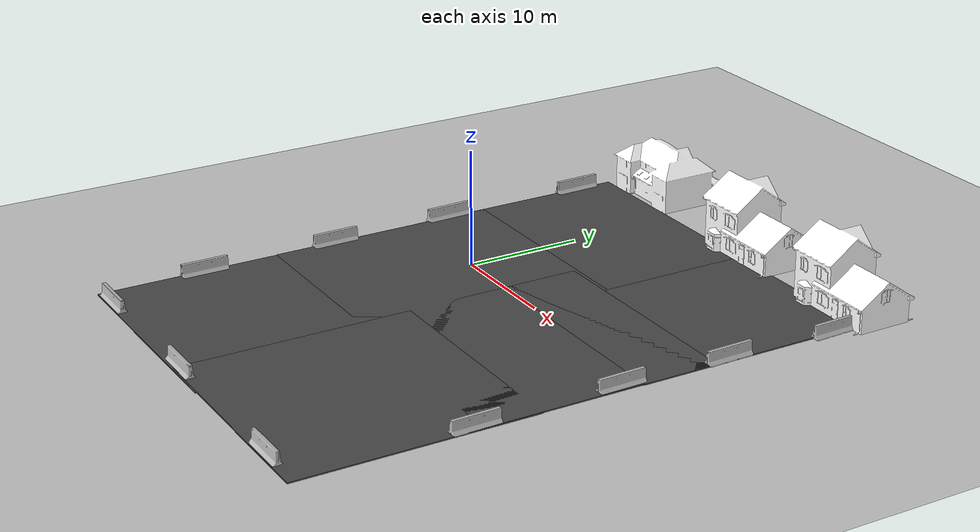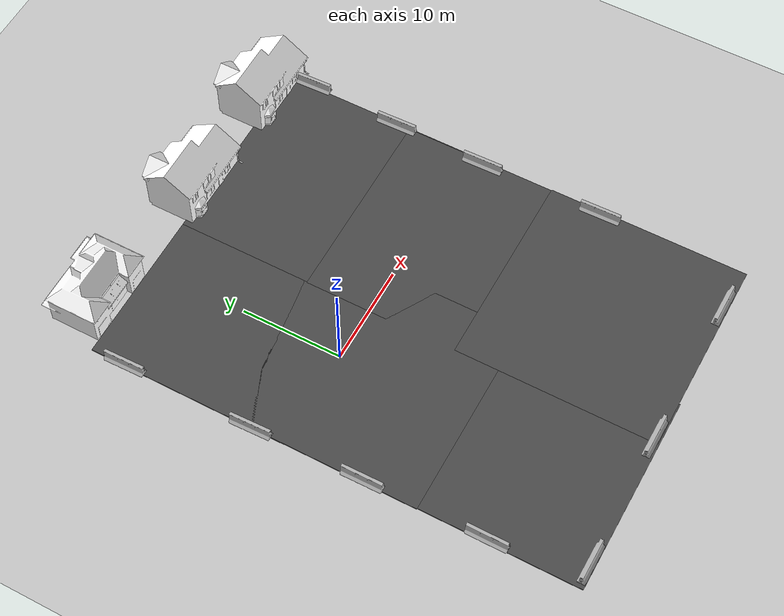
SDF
<sdf version="1.4">
 <world name="default">
  <light name="sun" type="directional">
   <pose>0 0 10 0 -0 0</pose>
   <diffuse>0.8 0.8 0.8 1</diffuse>
   <specular>0.2 0.2 0.2 1</specular>
   <attenuation>
    <range>1000</range>
    <constant>0.9</constant>
    <linear>0.01</linear>
    <quadratic>0.001</quadratic>
   </attenuation>
   <direction>-0.5 0.1 -0.9</direction>
  </light>
  <model name="ground_plane">
   <static>1</static>
   <link name="link">
    <collision name="collision">
     <geometry><plane><normal>0 0 1</normal><size>100 100</size></plane></geometry>
     <surface><friction><ode><mu>100</mu><mu2>50</mu2></ode></friction></surface>
    </collision>
    <visual name="visual">
     <cast_shadows>0</cast_shadows>
     <geometry><plane><normal>0 0 1</normal><size>100 100</size></plane></geometry>
     <material>
      <script><uri>file://media/materials/scripts/gazebo.material</uri><name>Gazebo/Grey</name></script>
     </material>
    </visual>
    <velocity_decay><linear>0</linear><angular>0</angular></velocity_decay>
   </link>
  </model>
  <physics type="ode">
   <max_step_size>0.001</max_step_size>
   <real_time_factor>1</real_time_factor>
   <real_time_update_rate>1000</real_time_update_rate>
   <gravity>0 0 -9.8</gravity>
  </physics>
  <scene><ambient>0.4 0.4 0.4 1</ambient><background>0.7 0.7 0.7 1</background><shadows>1</shadows></scene>
  <spherical_coordinates>
   <surface_model>EARTH_WGS84</surface_model>
   <latitude_deg>0</latitude_deg>
   <longitude_deg>0</longitude_deg>
   <elevation>0</elevation>
   <heading_deg>0</heading_deg>
  </spherical_coordinates>
  <model name="asphalt_plane">
   <static>1</static>
   <link name="link">
    <collision name="collision"><geometry><box><size>20 20 0.1</size></box></geometry></collision>
    <visual name="visual">
     <cast_shadows>0</cast_shadows>
     <geometry><box><size>20 20 0.1</size></box></geometry>
     <material>
      <script>
       <uri>model://asphalt_plane/materials/scripts</uri>
       <uri>model://asphalt_plane/materials/textures</uri>
       <name>vrc/asphalt</name>
      </script>
     </material>
    </visual>
    <velocity_decay><linear>0</linear><angular>0</angular></velocity_decay>
   </link>
   <pose>0.030437 -3.13546 0 0 -0 0</pose>
  </model>
  <model name="jersey_barrier">
   <static>1</static>
   <link name="link">
    <visual name="visual">
     <geometry><mesh><uri>model://jersey_barrier/meshes/jersey_barrier.dae</uri></mesh></geometry>
    </visual>
    <collision name="upright">
     <pose>0 0 0.5715 0 -0 0</pose>
     <geometry><box><size>4.06542 0.3063 1.143</size></box></geometry>
    </collision>
    <collision name="base">
     <pose>0 0 0.032258 0 -0 0</pose>
     <geometry><box><size>4.06542 0.8107 0.064516</size></box></geometry>
    </collision>
    <collision name="base2">
     <pose>0 0 0.1 0 -0 0</pose>
     <geometry><box><size>4.06542 0.65 0.1</size></box></geometry>
    </collision>
    <collision name="base3">
     <pose>0 0 0.2 0 -0 0</pose>
     <geometry><box><size>4.06542 0.5 0.1</size></box></geometry>
    </collision>
    <collision name="left-angle">
     <pose>0 -0.224 0.2401 0.9 -0 0</pose>
     <geometry><box><size>4.06542 0.5 0.064516</size></box></geometry>
    </collision>
    <collision name="right-angle">
     <pose>0 0.224 0.2401 -0.9 0 0</pose>
     <geometry><box><size>4.06542 0.5 0.064516</size></box></geometry>
    </collision>
    <velocity_decay><linear>0</linear><angular>0</angular></velocity_decay>
   </link>
   <pose>21.0984 -28.2425 0 0 -0 0</pose>
  </model>
  <model name="jersey_barrier_0">
   <static>1</static>
   <link name="link">
    <visual name="visual">
     <geometry><mesh><uri>model://jersey_barrier/meshes/jersey_barrier.dae</uri></mesh></geometry>
    </visual>
    <collision name="upright">
     <pose>0 0 0.5715 0 -0 0</pose>
     <geometry><box><size>4.06542 0.3063 1.143</size></box></geometry>
    </collision>
    <collision name="base">
     <pose>0 0 0.032258 0 -0 0</pose>
     <geometry><box><size>4.06542 0.8107 0.064516</size></box></geometry>
    </collision>
    <collision name="base2">
     <pose>0 0 0.1 0 -0 0</pose>
     <geometry><box><size>4.06542 0.65 0.1</size></box></geometry>
    </collision>
    <collision name="base3">
     <pose>0 0 0.2 0 -0 0</pose>
     <geometry><box><size>4.06542 0.5 0.1</size></box></geometry>
    </collision>
    <collision name="left-angle">
     <pose>0 -0.224 0.2401 0.9 -0 0</pose>
     <geometry><box><size>4.06542 0.5 0.064516</size></box></geometry>
    </collision>
    <collision name="right-angle">
     <pose>0 0.224 0.2401 -0.9 0 0</pose>
     <geometry><box><size>4.06542 0.5 0.064516</size></box></geometry>
    </collision>
    <velocity_decay><linear>0</linear><angular>0</angular></velocity_decay>
   </link>
   <pose>5.90195 -28.2526 0 0 -0 0</pose>
  </model>
  <model name="jersey_barrier_1">
   <static>1</static>
   <link name="link">
    <visual name="visual">
     <geometry><mesh><uri>model://jersey_barrier/meshes/jersey_barrier.dae</uri></mesh></geometry>
    </visual>
    <collision name="upright">
     <pose>0 0 0.5715 0 -0 0</pose>
     <geometry><box><size>4.06542 0.3063 1.143</size></box></geometry>
    </collision>
    <collision name="base">
     <pose>0 0 0.032258 0 -0 0</pose>
     <geometry><box><size>4.06542 0.8107 0.064516</size></box></geometry>
    </collision>
    <collision name="base2">
     <pose>0 0 0.1 0 -0 0</pose>
     <geometry><box><size>4.06542 0.65 0.1</size></box></geometry>
    </collision>
    <collision name="base3">
     <pose>0 0 0.2 0 -0 0</pose>
     <geometry><box><size>4.06542 0.5 0.1</size></box></geometry>
    </collision>
    <collision name="left-angle">
     <pose>0 -0.224 0.2401 0.9 -0 0</pose>
     <geometry><box><size>4.06542 0.5 0.064516</size></box></geometry>
    </collision>
    <collision name="right-angle">
     <pose>0 0.224 0.2401 -0.9 0 0</pose>
     <geometry><box><size>4.06542 0.5 0.064516</size></box></geometry>
    </collision>
    <velocity_decay><linear>0</linear><angular>0</angular></velocity_decay>
   </link>
   <pose>-7.47394 -28.3953 0 0 -0 0</pose>
  </model>
  <model name="jersey_barrier_2">
   <static>1</static>
   <link name="link">
    <visual name="visual">
     <geometry><mesh><uri>model://jersey_barrier/meshes/jersey_barrier.dae</uri></mesh></geometry>
    </visual>
    <collision name="upright">
     <pose>0 0 0.5715 0 -0 0</pose>
     <geometry><box><size>4.06542 0.3063 1.143</size></box></geometry>
    </collision>
    <collision name="base">
     <pose>0 0 0.032258 0 -0 0</pose>
     <geometry><box><size>4.06542 0.8107 0.064516</size></box></geometry>
    </collision>
    <collision name="base2">
     <pose>0 0 0.1 0 -0 0</pose>
     <geometry><box><size>4.06542 0.65 0.1</size></box></geometry>
    </collision>
    <collision name="base3">
     <pose>0 0 0.2 0 -0 0</pose>
     <geometry><box><size>4.06542 0.5 0.1</size></box></geometry>
    </collision>
    <collision name="left-angle">
     <pose>0 -0.224 0.2401 0.9 -0 0</pose>
     <geometry><box><size>4.06542 0.5 0.064516</size></box></geometry>
    </collision>
    <collision name="right-angle">
     <pose>0 0.224 0.2401 -0.9 0 0</pose>
     <geometry><box><size>4.06542 0.5 0.064516</size></box></geometry>
    </collision>
    <velocity_decay><linear>0</linear><angular>0</angular></velocity_decay>
   </link>
   <pose>-9.62184 -19.7051 0 0 0 -1.57192</pose>
  </model>
  <model name="jersey_barrier_3">
   <static>1</static>
   <link name="link">
    <visual name="visual">
     <geometry><mesh><uri>model://jersey_barrier/meshes/jersey_barrier.dae</uri></mesh></geometry>
    </visual>
    <collision name="upright">
     <pose>0 0 0.5715 0 -0 0</pose>
     <geometry><box><size>4.06542 0.3063 1.143</size></box></geometry>
    </collision>
    <collision name="base">
     <pose>0 0 0.032258 0 -0 0</pose>
     <geometry><box><size>4.06542 0.8107 0.064516</size></box></geometry>
    </collision>
    <collision name="base2">
     <pose>0 0 0.1 0 -0 0</pose>
     <geometry><box><size>4.06542 0.65 0.1</size></box></geometry>
    </collision>
    <collision name="base3">
     <pose>0 0 0.2 0 -0 0</pose>
     <geometry><box><size>4.06542 0.5 0.1</size></box></geometry>
    </collision>
    <collision name="left-angle">
     <pose>0 -0.224 0.2401 0.9 -0 0</pose>
     <geometry><box><size>4.06542 0.5 0.064516</size></box></geometry>
    </collision>
    <collision name="right-angle">
     <pose>0 0.224 0.2401 -0.9 0 0</pose>
     <geometry><box><size>4.06542 0.5 0.064516</size></box></geometry>
    </collision>
    <velocity_decay><linear>0</linear><angular>0</angular></velocity_decay>
   </link>
   <pose>25.0903 -13.975 0 0 0 -1.55011</pose>
  </model>
  <model name="jersey_barrier_4">
   <static>1</static>
   <link name="link">
    <visual name="visual">
     <geometry><mesh><uri>model://jersey_barrier/meshes/jersey_barrier.dae</uri></mesh></geometry>
    </visual>
    <collision name="upright">
     <pose>0 0 0.5715 0 -0 0</pose>
     <geometry><box><size>4.06542 0.3063 1.143</size></box></geometry>
    </collision>
    <collision name="base">
     <pose>0 0 0.032258 0 -0 0</pose>
     <geometry><box><size>4.06542 0.8107 0.064516</size></box></geometry>
    </collision>
    <collision name="base2">
     <pose>0 0 0.1 0 -0 0</pose>
     <geometry><box><size>4.06542 0.65 0.1</size></box></geometry>
    </collision>
    <collision name="base3">
     <pose>0 0 0.2 0 -0 0</pose>
     <geometry><box><size>4.06542 0.5 0.1</size></box></geometry>
    </collision>
    <collision name="left-angle">
     <pose>0 -0.224 0.2401 0.9 -0 0</pose>
     <geometry><box><size>4.06542 0.5 0.064516</size></box></geometry>
    </collision>
    <collision name="right-angle">
     <pose>0 0.224 0.2401 -0.9 0 0</pose>
     <geometry><box><size>4.06542 0.5 0.064516</size></box></geometry>
    </collision>
    <velocity_decay><linear>0</linear><angular>0</angular></velocity_decay>
   </link>
   <pose>-9.79209 -7.708 0 0 0 -1.56057</pose>
  </model>
  <model name="jersey_barrier_5">
   <static>1</static>
   <link name="link">
    <visual name="visual">
     <geometry><mesh><uri>model://jersey_barrier/meshes/jersey_barrier.dae</uri></mesh></geometry>
    </visual>
    <collision name="upright">
     <pose>0 0 0.5715 0 -0 0</pose>
     <geometry><box><size>4.06542 0.3063 1.143</size></box></geometry>
    </collision>
    <collision name="base">
     <pose>0 0 0.032258 0 -0 0</pose>
     <geometry><box><size>4.06542 0.8107 0.064516</size></box></geometry>
    </collision>
    <collision name="base2">
     <pose>0 0 0.1 0 -0 0</pose>
     <geometry><box><size>4.06542 0.65 0.1</size></box></geometry>
    </collision>
    <collision name="base3">
     <pose>0 0 0.2 0 -0 0</pose>
     <geometry><box><size>4.06542 0.5 0.1</size></box></geometry>
    </collision>
    <collision name="left-angle">
     <pose>0 -0.224 0.2401 0.9 -0 0</pose>
     <geometry><box><size>4.06542 0.5 0.064516</size></box></geometry>
    </collision>
    <collision name="right-angle">
     <pose>0 0.224 0.2401 -0.9 0 0</pose>
     <geometry><box><size>4.06542 0.5 0.064516</size></box></geometry>
    </collision>
    <velocity_decay><linear>0</linear><angular>0</angular></velocity_decay>
   </link>
   <pose>24.9445 -1.63963 0 0 0 -1.55025</pose>
  </model>
  <model name="asphalt_plane_0">
   <static>1</static>
   <link name="link">
    <collision name="collision"><geometry><box><size>20 20 0.1</size></box></geometry></collision>
    <visual name="visual">
     <cast_shadows>0</cast_shadows>
     <geometry><box><size>20 20 0.1</size></box></geometry>
     <material>
      <script>
       <uri>model://asphalt_plane/materials/scripts</uri>
       <uri>model://asphalt_plane/materials/textures</uri>
       <name>vrc/asphalt</name>
      </script>
     </material>
    </visual>
    <velocity_decay><linear>0</linear><angular>0</angular></velocity_decay>
   </link>
   <pose>0 10 0 0 -0 0</pose>
  </model>
  <model name="jersey_barrier_8">
   <static>1</static>
   <link name="link">
    <visual name="visual">
     <geometry><mesh><uri>model://jersey_barrier/meshes/jersey_barrier.dae</uri></mesh></geometry>
    </visual>
    <collision name="upright">
     <pose>0 0 0.5715 0 -0 0</pose>
     <geometry><box><size>4.06542 0.3063 1.143</size></box></geometry>
    </collision>
    <collision name="base">
     <pose>0 0 0.032258 0 -0 0</pose>
     <geometry><box><size>4.06542 0.8107 0.064516</size></box></geometry>
    </collision>
    <collision name="base2">
     <pose>0 0 0.1 0 -0 0</pose>
     <geometry><box><size>4.06542 0.65 0.1</size></box></geometry>
    </collision>
    <collision name="base3">
     <pose>0 0 0.2 0 -0 0</pose>
     <geometry><box><size>4.06542 0.5 0.1</size></box></geometry>
    </collision>
    <collision name="left-angle">
     <pose>0 -0.224 0.2401 0.9 -0 0</pose>
     <geometry><box><size>4.06542 0.5 0.064516</size></box></geometry>
    </collision>
    <collision name="right-angle">
     <pose>0 0.224 0.2401 -0.9 0 0</pose>
     <geometry><box><size>4.06542 0.5 0.064516</size></box></geometry>
    </collision>
    <velocity_decay><linear>0</linear><angular>0</angular></velocity_decay>
   </link>
   <pose>25.1873 7.83728 0 0 0 -1.5463</pose>
  </model>
  <model name="jersey_barrier_9">
   <static>1</static>
   <link name="link">
    <visual name="visual">
     <geometry><mesh><uri>model://jersey_barrier/meshes/jersey_barrier.dae</uri></mesh></geometry>
    </visual>
    <collision name="upright">
     <pose>0 0 0.5715 0 -0 0</pose>
     <geometry><box><size>4.06542 0.3063 1.143</size></box></geometry>
    </collision>
    <collision name="base">
     <pose>0 0 0.032258 0 -0 0</pose>
     <geometry><box><size>4.06542 0.8107 0.064516</size></box></geometry>
    </collision>
    <collision name="base2">
     <pose>0 0 0.1 0 -0 0</pose>
     <geometry><box><size>4.06542 0.65 0.1</size></box></geometry>
    </collision>
    <collision name="base3">
     <pose>0 0 0.2 0 -0 0</pose>
     <geometry><box><size>4.06542 0.5 0.1</size></box></geometry>
    </collision>
    <collision name="left-angle">
     <pose>0 -0.224 0.2401 0.9 -0 0</pose>
     <geometry><box><size>4.06542 0.5 0.064516</size></box></geometry>
    </collision>
    <collision name="right-angle">
     <pose>0 0.224 0.2401 -0.9 0 0</pose>
     <geometry><box><size>4.06542 0.5 0.064516</size></box></geometry>
    </collision>
    <velocity_decay><linear>0</linear><angular>0</angular></velocity_decay>
   </link>
   <pose>25.6023 17.5115 0 0 0 -1.53629</pose>
  </model>
  <model name="jersey_barrier_10">
   <static>1</static>
   <link name="link">
    <visual name="visual">
     <geometry><mesh><uri>model://jersey_barrier/meshes/jersey_barrier.dae</uri></mesh></geometry>
    </visual>
    <collision name="upright">
     <pose>0 0 0.5715 0 -0 0</pose>
     <geometry><box><size>4.06542 0.3063 1.143</size></box></geometry>
    </collision>
    <collision name="base">
     <pose>0 0 0.032258 0 -0 0</pose>
     <geometry><box><size>4.06542 0.8107 0.064516</size></box></geometry>
    </collision>
    <collision name="base2">
     <pose>0 0 0.1 0 -0 0</pose>
     <geometry><box><size>4.06542 0.65 0.1</size></box></geometry>
    </collision>
    <collision name="base3">
     <pose>0 0 0.2 0 -0 0</pose>
     <geometry><box><size>4.06542 0.5 0.1</size></box></geometry>
    </collision>
    <collision name="left-angle">
     <pose>0 -0.224 0.2401 0.9 -0 0</pose>
     <geometry><box><size>4.06542 0.5 0.064516</size></box></geometry>
    </collision>
    <collision name="right-angle">
     <pose>0 0.224 0.2401 -0.9 0 0</pose>
     <geometry><box><size>4.06542 0.5 0.064516</size></box></geometry>
    </collision>
    <velocity_decay><linear>0</linear><angular>0</angular></velocity_decay>
   </link>
   <pose>-10.0111 3.35383 0 0 0 -1.54096</pose>
  </model>
  <model name="jersey_barrier_11">
   <static>1</static>
   <link name="link">
    <visual name="visual">
     <geometry><mesh><uri>model://jersey_barrier/meshes/jersey_barrier.dae</uri></mesh></geometry>
    </visual>
    <collision name="upright">
     <pose>0 0 0.5715 0 -0 0</pose>
     <geometry><box><size>4.06542 0.3063 1.143</size></box></geometry>
    </collision>
    <collision name="base">
     <pose>0 0 0.032258 0 -0 0</pose>
     <geometry><box><size>4.06542 0.8107 0.064516</size></box></geometry>
    </collision>
    <collision name="base2">
     <pose>0 0 0.1 0 -0 0</pose>
     <geometry><box><size>4.06542 0.65 0.1</size></box></geometry>
    </collision>
    <collision name="base3">
     <pose>0 0 0.2 0 -0 0</pose>
     <geometry><box><size>4.06542 0.5 0.1</size></box></geometry>
    </collision>
    <collision name="left-angle">
     <pose>0 -0.224 0.2401 0.9 -0 0</pose>
     <geometry><box><size>4.06542 0.5 0.064516</size></box></geometry>
    </collision>
    <collision name="right-angle">
     <pose>0 0.224 0.2401 -0.9 0 0</pose>
     <geometry><box><size>4.06542 0.5 0.064516</size></box></geometry>
    </collision>
    <velocity_decay><linear>0</linear><angular>0</angular></velocity_decay>
   </link>
   <pose>-9.89857 16.4946 0 0 0 -1.55018</pose>
  </model>
  <model name="House 2">
   <static>1</static>
   <link name="link">
    <collision name="collision">
     <geometry><mesh><uri>model://house_2/meshes/house_2.dae</uri></mesh></geometry>
    </collision>
    <visual name="visual">
     <geometry><mesh><uri>model://house_2/meshes/house_2.dae</uri></mesh></geometry>
     <material>
      <script>
       <uri>model://house_2/materials/scripts</uri>
       <uri>model://house_2/materials/textures</uri>
       <uri>model://house_1/materials/textures</uri>
       <name>House_2/Diffuse</name>
      </script>
      <shader type="normal_map_object_space">
       <normal_map>model://house_1/materials/textures/House_1_Normal.png</normal_map>
      </shader>
     </material>
    </visual>
    <velocity_decay><linear>0</linear><angular>0</angular></velocity_decay>
   </link>
   <pose>-5.55865 22.5873 0 0 -0 0</pose>
  </model>
  <model name="House 3">
   <static>1</static>
   <link name="link">
    <collision name="collision">
     <geometry><mesh><uri>model://house_3/meshes/house_3.dae</uri></mesh></geometry>
    </collision>
    <visual name="visual">
     <geometry><mesh><uri>model://house_3/meshes/house_3.dae</uri></mesh></geometry>
     <material>
      <script>
       <uri>model://house_3/materials/scripts</uri>
       <uri>model://house_3/materials/textures</uri>
       <uri>model://house_1/materials/textures</uri>
       <name>House_3/Diffuse</name>
      </script>
      <shader type="normal_map_object_space">
       <normal_map>model://house_1/materials/textures/House_1_Normal.png</normal_map>
      </shader>
     </material>
    </visual>
    <velocity_decay><linear>0</linear><angular>0</angular></velocity_decay>
   </link>
   <pose>10.5708 21.6062 0 0 -0 0</pose>
  </model>
  <model name="asphalt_plane_1">
   <static>1</static>
   <link name="link">
    <collision name="collision"><geometry><box><size>20 20 0.1</size></box></geometry></collision>
    <visual name="visual">
     <cast_shadows>0</cast_shadows>
     <geometry><box><size>20 20 0.1</size></box></geometry>
     <material>
      <script>
       <uri>model://asphalt_plane/materials/scripts</uri>
       <uri>model://asphalt_plane/materials/textures</uri>
       <name>vrc/asphalt</name>
      </script>
     </material>
    </visual>
    <velocity_decay><linear>0</linear><angular>0</angular></velocity_decay>
   </link>
   <pose>15.4977 10 0 0 -0 0</pose>
  </model>
  <model name="asphalt_plane_2">
   <static>1</static>
   <link name="link">
    <collision name="collision"><geometry><box><size>20 20 0.1</size></box></geometry></collision>
    <visual name="visual">
     <cast_shadows>0</cast_shadows>
     <geometry><box><size>20 20 0.1</size></box></geometry>
     <material>
      <script>
       <uri>model://asphalt_plane/materials/scripts</uri>
       <uri>model://asphalt_plane/materials/textures</uri>
       <name>vrc/asphalt</name>
      </script>
     </material>
    </visual>
    <velocity_decay><linear>0</linear><angular>0</angular></velocity_decay>
   </link>
   <pose>0.098625 -18.8432 0 0 -0 0</pose>
  </model>
  <model name="asphalt_plane_3">
   <static>1</static>
   <link name="link">
    <collision name="collision"><geometry><box><size>20 20 0.1</size></box></geometry></collision>
    <visual name="visual">
     <cast_shadows>0</cast_shadows>
     <geometry><box><size>20 20 0.1</size></box></geometry>
     <material>
      <script>
       <uri>model://asphalt_plane/materials/scripts</uri>
       <uri>model://asphalt_plane/materials/textures</uri>
       <name>vrc/asphalt</name>
      </script>
     </material>
    </visual>
    <velocity_decay><linear>0</linear><angular>0</angular></velocity_decay>
   </link>
   <pose>15.5136 -18.7124 0 0 -0 0</pose>
  </model>
  <model name="asphalt_plane_4">
   <static>1</static>
   <link name="link">
    <collision name="collision"><geometry><box><size>20 20 0.1</size></box></geometry></collision>
    <visual name="visual">
     <cast_shadows>0</cast_shadows>
     <geometry><box><size>20 20 0.1</size></box></geometry>
     <material>
      <script>
       <uri>model://asphalt_plane/materials/scripts</uri>
       <uri>model://asphalt_plane/materials/textures</uri>
       <name>vrc/asphalt</name>
      </script>
     </material>
    </visual>
    <velocity_decay><linear>0</linear><angular>0</angular></velocity_decay>
   </link>
   <pose>15.4321 -3.44172 0 0 -0 0</pose>
  </model>
  <model name="House 3_0">
   <static>1</static>
   <link name="link">
    <collision name="collision">
     <geometry><mesh><uri>model://house_3/meshes/house_3.dae</uri></mesh></geometry>
    </collision>
    <visual name="visual">
     <geometry><mesh><uri>model://house_3/meshes/house_3.dae</uri></mesh></geometry>
     <material>
      <script>
       <uri>model://house_3/materials/scripts</uri>
       <uri>model://house_3/materials/textures</uri>
       <uri>model://house_1/materials/textures</uri>
       <name>House_3/Diffuse</name>
      </script>
      <shader type="normal_map_object_space">
       <normal_map>model://house_1/materials/textures/House_1_Normal.png</normal_map>
      </shader>
     </material>
    </visual>
    <velocity_decay><linear>0</linear><angular>0</angular></velocity_decay>
   </link>
   <pose>23 21.4174 0 0 -0 0</pose>
  </model>
 </world>
</sdf>
